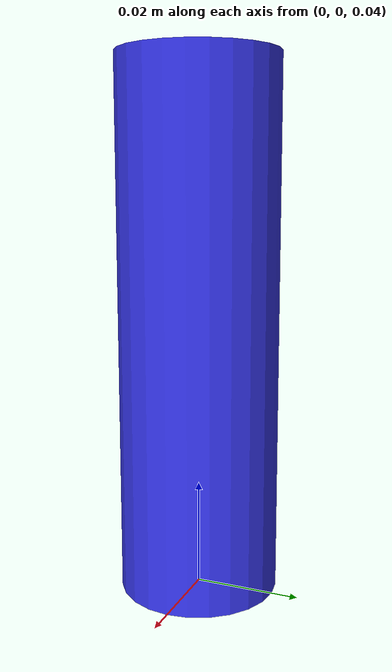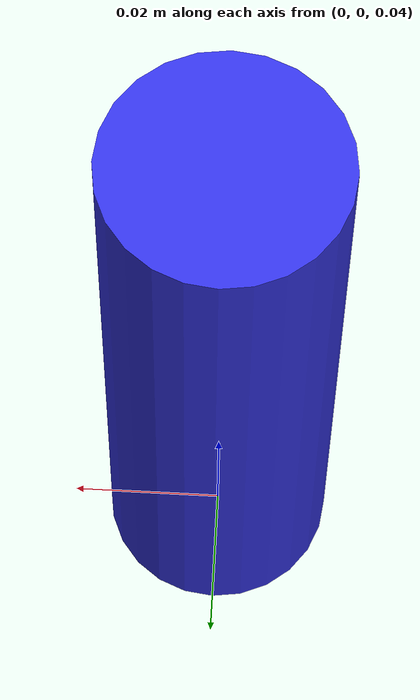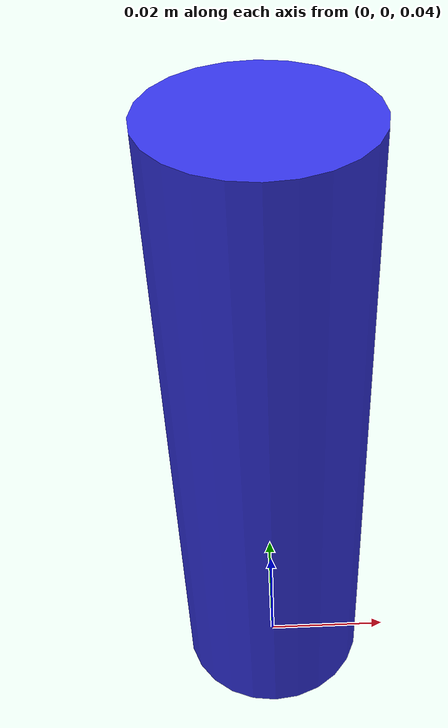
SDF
<?xml version="1.0" ?>
<sdf version="1.7">
  <model name="target">
    <link name="link">
      <inertial>
        <mass>0.01</mass>
        <inertia>
          <ixx>0.0001</ixx>
          <iyy>0.0001</iyy>
          <izz>0.00002</izz>
          <ixy>0</ixy>
          <ixz>0</ixz>
          <iyz>0</iyz>
        </inertia>
      </inertial>

      <collision name="collision">
        <pose>0 0 0.09 0 0 0</pose>
        <geometry>
          <cylinder>
            <radius>0.015</radius>
            <length>0.1</length>
          </cylinder>
        </geometry>
        <surface>
          <friction>
            <ode>
              <mu>0.7</mu>
              <mu2>0.7</mu2>
            </ode>
          </friction>
        </surface>
      </collision>

      <visual name="visual">
        <pose>0 0 0.09 0 0 0</pose>
        <geometry>
          <cylinder>
            <radius>0.015</radius>
            <length>0.1</length>
          </cylinder>
        </geometry>
        <material>
          <ambient>0.1 0.1 0.8 1.0</ambient>
          <diffuse>0.2 0.2 0.9 1.0</diffuse>
          <specular>0.5 0.5 0.5 1.0</specular>
          <emissive>0 0 0 1.0</emissive>
        </material>
      </visual>

    </link>
  </model>
</sdf>
